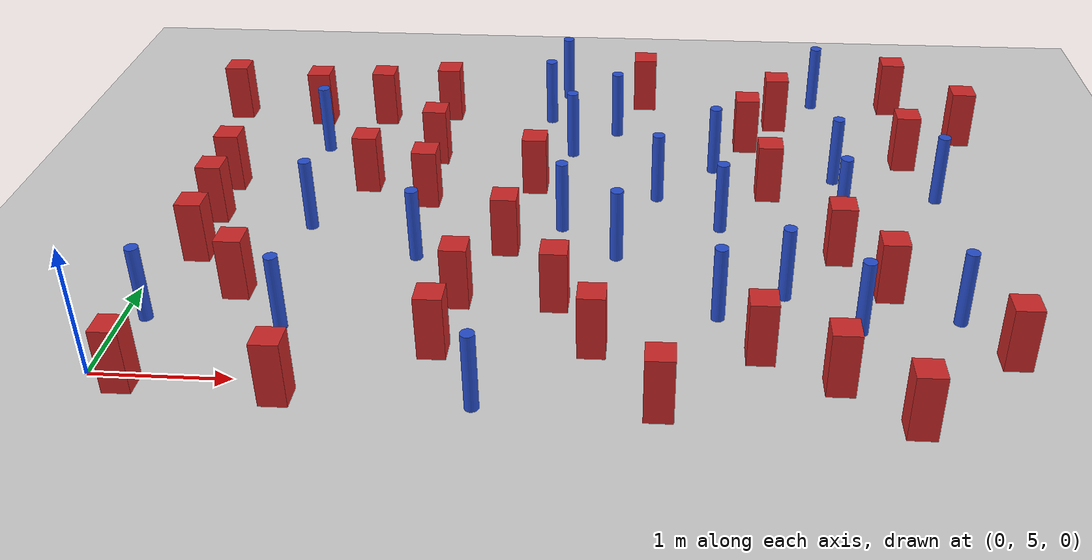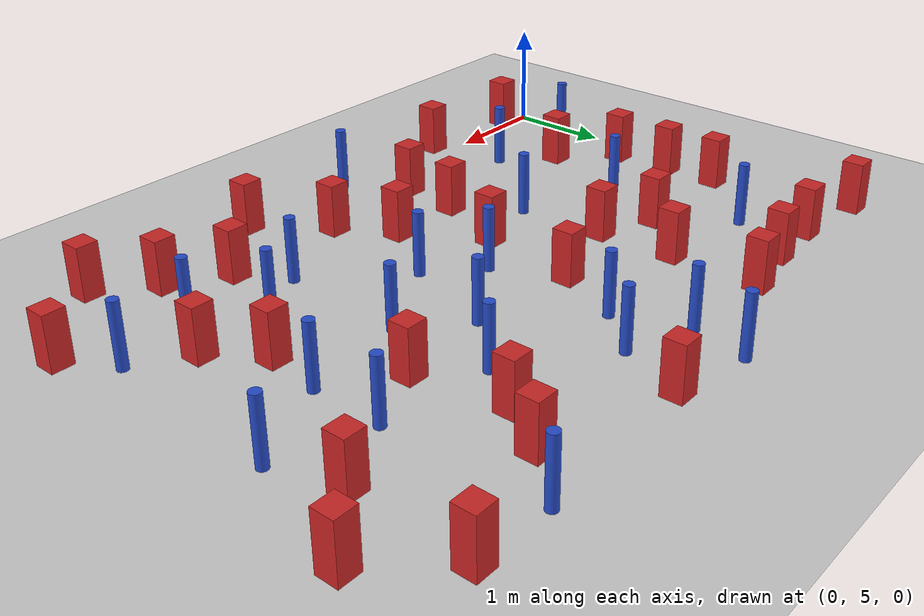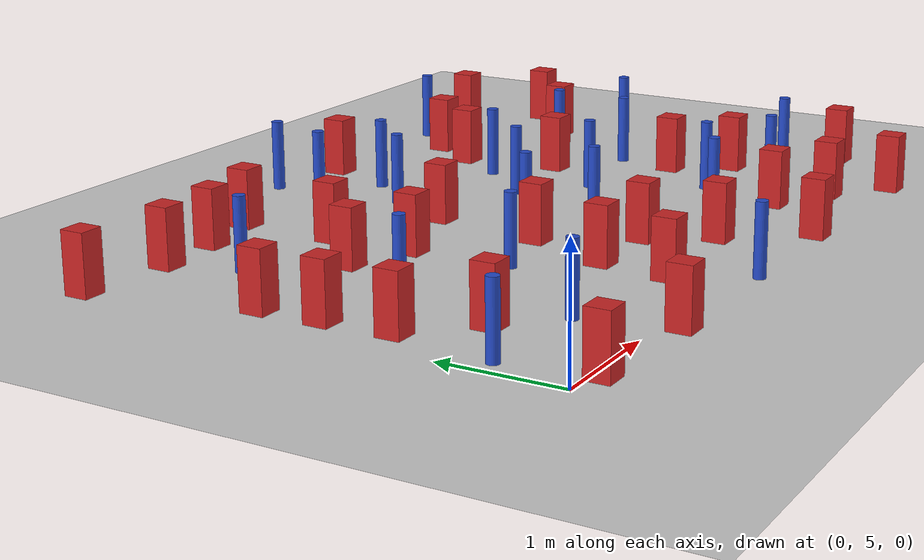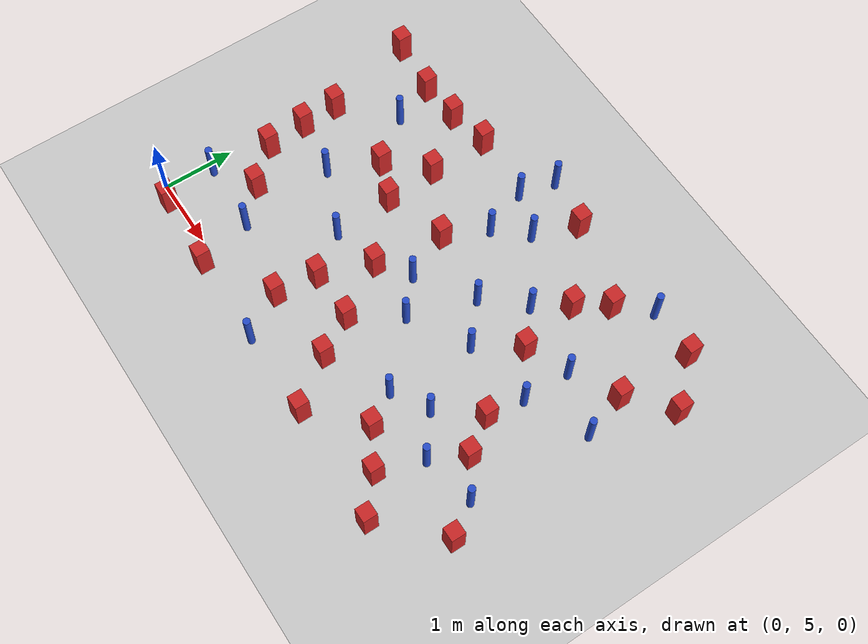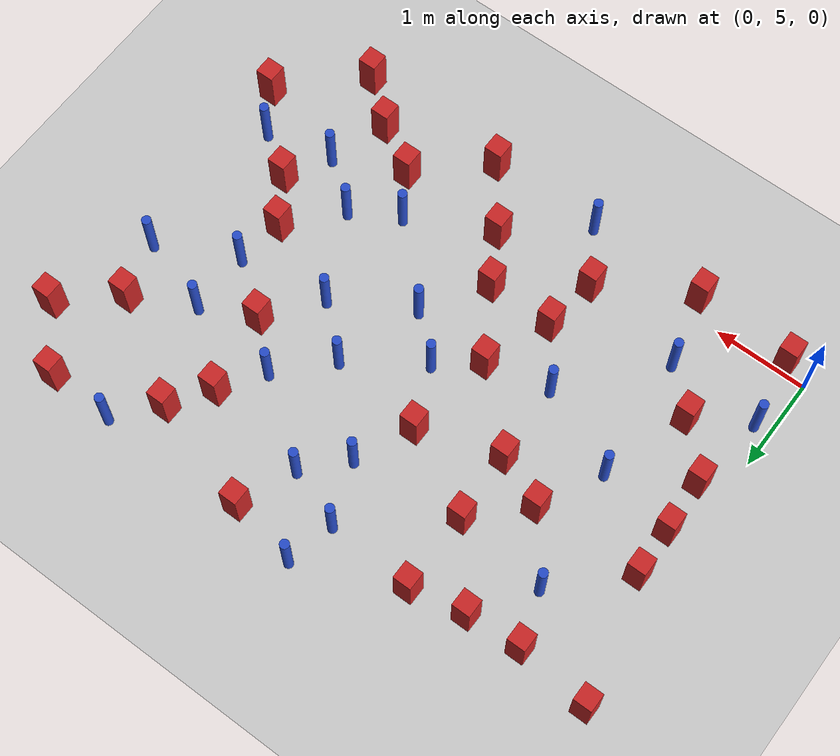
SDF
<sdf version="1.6">
 <world name="default">
  <model name="ground_plane">
   <static>1</static>
   <link name="link">
    <collision name="collision">
     <geometry><plane><normal>0 0 1</normal><size>100 100</size></plane></geometry>
     <surface><friction><ode><mu>100</mu><mu2>50</mu2></ode></friction></surface>
    </collision>
    <visual name="visual">
     <cast_shadows>0</cast_shadows>
     <geometry><plane><normal>0 0 1</normal><size>100 100</size></plane></geometry>
     <material>
      <ambient>1.0 1.0 1.0 1.0</ambient>
      <diffuse>0.8 0.8 0.8 1.0</diffuse>
      <specular>0.01 0.01 0.01 1.000000</specular>
     </material>
    </visual>
   </link>
  </model>
  <model name="pole_obstacle19">
   <static>true</static>
   <pose>3.04665153583 8.27095719519 2.88873142074e-08 -9.90536692318e-09 4.6021994893e-07 -1.20965994988e-07</pose>
   <link name="link">
    <pose>0 0 0.3 0 -0 0</pose>
    <inertial>
     <mass>1</mass>
     <inertia><ixx>0.145833</ixx><ixy>0</ixy><ixz>0</ixz><iyy>0.145833</iyy><iyz>0</iyz><izz>0.125</izz></inertia>
    </inertial>
    <collision name="collision">
     <geometry><cylinder><radius>0.05</radius><length>.6</length></cylinder></geometry>
    </collision>
    <visual name="visual">
     <geometry><cylinder><radius>0.05</radius><length>.6</length></cylinder></geometry>
     <material>
      <script><name>Gazebo/Blue</name><uri>file://media/materials/scripts/gazebo.material</uri></script>
     </material>
    </visual>
   </link>
  </model>
  <model name="square_post_obstacle15">
   <static>true</static>
   <pose>5.49864312743 4.75280284831 8.22691968438e-08 7.2212513382e-06 -7.54495500217e-07 2.29674213826e-05</pose>
   <link name="link">
    <pose>0 0 0.25 0 -0 0</pose>
    <inertial>
     <mass>100</mass>
     <inertia>
      <ixx>0.166667</ixx>
      <ixy>0</ixy>
      <ixz>0</ixz>
      <iyy>0.166667</iyy>
      <iyz>0</iyz>
      <izz>0.166667</izz>
     </inertia>
    </inertial>
    <collision name="collision"><geometry><box><size>.2 .2 .5</size></box></geometry></collision>
    <visual name="visual">
     <geometry><box><size>.2 .2 .5</size></box></geometry>
     <material>
      <script><name>Gazebo/Red</name><uri>file://media/materials/scripts/gazebo.material</uri></script>
     </material>
    </visual>
   </link>
  </model>
  <model name="pole_obstacle25">
   <static>true</static>
   <pose>5.22740422593 9.34821643953 2.88873142074e-08 -9.9053668967e-09 4.60219948993e-07 -1.20965994957e-07</pose>
   <link name="link">
    <pose>0 0 0.3 0 -0 0</pose>
    <inertial>
     <mass>1</mass>
     <inertia><ixx>0.145833</ixx><ixy>0</ixy><ixz>0</ixz><iyy>0.145833</iyy><iyz>0</iyz><izz>0.125</izz></inertia>
    </inertial>
    <collision name="collision">
     <geometry><cylinder><radius>0.05</radius><length>.6</length></cylinder></geometry>
    </collision>
    <visual name="visual">
     <geometry><cylinder><radius>0.05</radius><length>.6</length></cylinder></geometry>
     <material>
      <script><name>Gazebo/Blue</name><uri>file://media/materials/scripts/gazebo.material</uri></script>
     </material>
    </visual>
   </link>
  </model>
  <model name="pole_obstacle29">
   <static>true</static>
   <pose>3.04993943318 7.02499457316 2.88873142074e-08 -9.90536689859e-09 4.60219948989e-07 -1.20965994961e-07</pose>
   <link name="link">
    <pose>0 0 0.3 0 -0 0</pose>
    <inertial>
     <mass>1</mass>
     <inertia><ixx>0.145833</ixx><ixy>0</ixy><ixz>0</ixz><iyy>0.145833</iyy><iyz>0</iyz><izz>0.125</izz></inertia>
    </inertial>
    <collision name="collision">
     <geometry><cylinder><radius>0.05</radius><length>.6</length></cylinder></geometry>
    </collision>
    <visual name="visual">
     <geometry><cylinder><radius>0.05</radius><length>.6</length></cylinder></geometry>
     <material>
      <script><name>Gazebo/Blue</name><uri>file://media/materials/scripts/gazebo.material</uri></script>
     </material>
    </visual>
   </link>
  </model>
  <model name="pole_obstacle32">
   <static>true</static>
   <pose>4.7484195293 6.16862415002 2.88873142074e-08 -9.90536690842e-09 4.60219948965e-07 -1.20965994976e-07</pose>
   <link name="link">
    <pose>0 0 0.3 0 -0 0</pose>
    <inertial>
     <mass>1</mass>
     <inertia><ixx>0.145833</ixx><ixy>0</ixy><ixz>0</ixz><iyy>0.145833</iyy><iyz>0</iyz><izz>0.125</izz></inertia>
    </inertial>
    <collision name="collision">
     <geometry><cylinder><radius>0.05</radius><length>.6</length></cylinder></geometry>
    </collision>
    <visual name="visual">
     <geometry><cylinder><radius>0.05</radius><length>.6</length></cylinder></geometry>
     <material>
      <script><name>Gazebo/Blue</name><uri>file://media/materials/scripts/gazebo.material</uri></script>
     </material>
    </visual>
   </link>
  </model>
  <model name="square_post_obstacle29">
   <static>true</static>
   <pose>3.65491956504 9.29031827062 8.22691968438e-08 7.22125133819e-06 -7.54495500217e-07 2.29674213826e-05</pose>
   <link name="link">
    <pose>0 0 0.25 0 -0 0</pose>
    <inertial>
     <mass>100</mass>
     <inertia>
      <ixx>0.166667</ixx>
      <ixy>0</ixy>
      <ixz>0</ixz>
      <iyy>0.166667</iyy>
      <iyz>0</iyz>
      <izz>0.166667</izz>
     </inertia>
    </inertial>
    <collision name="collision"><geometry><box><size>.2 .2 .5</size></box></geometry></collision>
    <visual name="visual">
     <geometry><box><size>.2 .2 .5</size></box></geometry>
     <material>
      <script><name>Gazebo/Red</name><uri>file://media/materials/scripts/gazebo.material</uri></script>
     </material>
    </visual>
   </link>
  </model>
  <model name="pole_obstacle44">
   <static>true</static>
   <pose>5.2570854194 5.77108626828 2.88873142074e-08 -9.90536690842e-09 4.60219948965e-07 -1.20965994976e-07</pose>
   <link name="link">
    <pose>0 0 0.3 0 -0 0</pose>
    <inertial>
     <mass>1</mass>
     <inertia><ixx>0.145833</ixx><ixy>0</ixy><ixz>0</ixz><iyy>0.145833</iyy><iyz>0</iyz><izz>0.125</izz></inertia>
    </inertial>
    <collision name="collision">
     <geometry><cylinder><radius>0.05</radius><length>.6</length></cylinder></geometry>
    </collision>
    <visual name="visual">
     <geometry><cylinder><radius>0.05</radius><length>.6</length></cylinder></geometry>
     <material>
      <script><name>Gazebo/Blue</name><uri>file://media/materials/scripts/gazebo.material</uri></script>
     </material>
    </visual>
   </link>
  </model>
  <model name="square_post_obstacle39">
   <static>true</static>
   <pose>4.70937005417 7.64561651861 8.22691968438e-08 7.2212513382e-06 -7.54495500217e-07 2.29674213826e-05</pose>
   <link name="link">
    <pose>0 0 0.25 0 -0 0</pose>
    <inertial>
     <mass>100</mass>
     <inertia>
      <ixx>0.166667</ixx>
      <ixy>0</ixy>
      <ixz>0</ixz>
      <iyy>0.166667</iyy>
      <iyz>0</iyz>
      <izz>0.166667</izz>
     </inertia>
    </inertial>
    <collision name="collision"><geometry><box><size>.2 .2 .5</size></box></geometry></collision>
    <visual name="visual">
     <geometry><box><size>.2 .2 .5</size></box></geometry>
     <material>
      <script><name>Gazebo/Red</name><uri>file://media/materials/scripts/gazebo.material</uri></script>
     </material>
    </visual>
   </link>
  </model>
  <model name="square_post_obstacle54">
   <static>true</static>
   <pose>0.275671468082 4.90652635051 8.22691968438e-08 7.22125133819e-06 -7.54495500217e-07 2.29674213826e-05</pose>
   <link name="link">
    <pose>0 0 0.25 0 -0 0</pose>
    <inertial>
     <mass>100</mass>
     <inertia>
      <ixx>0.166667</ixx>
      <ixy>0</ixy>
      <ixz>0</ixz>
      <iyy>0.166667</iyy>
      <iyz>0</iyz>
      <izz>0.166667</izz>
     </inertia>
    </inertial>
    <collision name="collision"><geometry><box><size>.2 .2 .5</size></box></geometry></collision>
    <visual name="visual">
     <geometry><box><size>.2 .2 .5</size></box></geometry>
     <material>
      <script><name>Gazebo/Red</name><uri>file://media/materials/scripts/gazebo.material</uri></script>
     </material>
    </visual>
   </link>
  </model>
  <model name="square_post_obstacle58">
   <static>true</static>
   <pose>1.34291297861 4.83389590893 8.22691968438e-08 7.2212513382e-06 -7.54495500217e-07 2.29674213826e-05</pose>
   <link name="link">
    <pose>0 0 0.25 0 -0 0</pose>
    <inertial>
     <mass>100</mass>
     <inertia>
      <ixx>0.166667</ixx>
      <ixy>0</ixy>
      <ixz>0</ixz>
      <iyy>0.166667</iyy>
      <iyz>0</iyz>
      <izz>0.166667</izz>
     </inertia>
    </inertial>
    <collision name="collision"><geometry><box><size>.2 .2 .5</size></box></geometry></collision>
    <visual name="visual">
     <geometry><box><size>.2 .2 .5</size></box></geometry>
     <material>
      <script><name>Gazebo/Red</name><uri>file://media/materials/scripts/gazebo.material</uri></script>
     </material>
    </visual>
   </link>
  </model>
  <model name="pole_obstacle73">
   <static>true</static>
   <pose>1.95837399342 6.54245236486 2.88873142074e-08 -9.9053668918e-09 4.60219949005e-07 -1.20965994951e-07</pose>
   <link name="link">
    <pose>0 0 0.3 0 -0 0</pose>
    <inertial>
     <mass>1</mass>
     <inertia><ixx>0.145833</ixx><ixy>0</ixy><ixz>0</ixz><iyy>0.145833</iyy><iyz>0</iyz><izz>0.125</izz></inertia>
    </inertial>
    <collision name="collision">
     <geometry><cylinder><radius>0.05</radius><length>.6</length></cylinder></geometry>
    </collision>
    <visual name="visual">
     <geometry><cylinder><radius>0.05</radius><length>.6</length></cylinder></geometry>
     <material>
      <script><name>Gazebo/Blue</name><uri>file://media/materials/scripts/gazebo.material</uri></script>
     </material>
    </visual>
   </link>
  </model>
  <model name="pole_obstacle78">
   <static>true</static>
   <pose>0.880067249082 8.24303886958 2.88873142074e-08 -9.90536690779e-09 4.60219948967e-07 -1.20965994975e-07</pose>
   <link name="link">
    <pose>0 0 0.3 0 -0 0</pose>
    <inertial>
     <mass>1</mass>
     <inertia><ixx>0.145833</ixx><ixy>0</ixy><ixz>0</ixz><iyy>0.145833</iyy><iyz>0</iyz><izz>0.125</izz></inertia>
    </inertial>
    <collision name="collision">
     <geometry><cylinder><radius>0.05</radius><length>.6</length></cylinder></geometry>
    </collision>
    <visual name="visual">
     <geometry><cylinder><radius>0.05</radius><length>.6</length></cylinder></geometry>
     <material>
      <script><name>Gazebo/Blue</name><uri>file://media/materials/scripts/gazebo.material</uri></script>
     </material>
    </visual>
   </link>
  </model>
  <model name="square_post_obstacle68">
   <static>true</static>
   <pose>5.0352594193 5.14839521115 8.22691968438e-08 7.2212513382e-06 -7.54495500217e-07 2.29674213826e-05</pose>
   <link name="link">
    <pose>0 0 0.25 0 -0 0</pose>
    <inertial>
     <mass>100</mass>
     <inertia>
      <ixx>0.166667</ixx>
      <ixy>0</ixy>
      <ixz>0</ixz>
      <iyy>0.166667</iyy>
      <iyz>0</iyz>
      <izz>0.166667</izz>
     </inertia>
    </inertial>
    <collision name="collision"><geometry><box><size>.2 .2 .5</size></box></geometry></collision>
    <visual name="visual">
     <geometry><box><size>.2 .2 .5</size></box></geometry>
     <material>
      <script><name>Gazebo/Red</name><uri>file://media/materials/scripts/gazebo.material</uri></script>
     </material>
    </visual>
   </link>
  </model>
  <model name="square_post_obstacle70">
   <static>true</static>
   <pose>0.737729937497 6.00797139993 8.22691968438e-08 7.2212513382e-06 -7.54495500217e-07 2.29674213826e-05</pose>
   <link name="link">
    <pose>0 0 0.25 0 -0 0</pose>
    <inertial>
     <mass>100</mass>
     <inertia>
      <ixx>0.166667</ixx>
      <ixy>0</ixy>
      <ixz>0</ixz>
      <iyy>0.166667</iyy>
      <iyz>0</iyz>
      <izz>0.166667</izz>
     </inertia>
    </inertial>
    <collision name="collision"><geometry><box><size>.2 .2 .5</size></box></geometry></collision>
    <visual name="visual">
     <geometry><box><size>.2 .2 .5</size></box></geometry>
     <material>
      <script><name>Gazebo/Red</name><uri>file://media/materials/scripts/gazebo.material</uri></script>
     </material>
    </visual>
   </link>
  </model>
  <model name="square_post_obstacle71">
   <static>true</static>
   <pose>4.56256185529 8.49492502473 8.22691968438e-08 7.22125133819e-06 -7.54495500217e-07 2.29674213826e-05</pose>
   <link name="link">
    <pose>0 0 0.25 0 -0 0</pose>
    <inertial>
     <mass>100</mass>
     <inertia>
      <ixx>0.166667</ixx>
      <ixy>0</ixy>
      <ixz>0</ixz>
      <iyy>0.166667</iyy>
      <iyz>0</iyz>
      <izz>0.166667</izz>
     </inertia>
    </inertial>
    <collision name="collision"><geometry><box><size>.2 .2 .5</size></box></geometry></collision>
    <visual name="visual">
     <geometry><box><size>.2 .2 .5</size></box></geometry>
     <material>
      <script><name>Gazebo/Red</name><uri>file://media/materials/scripts/gazebo.material</uri></script>
     </material>
    </visual>
   </link>
  </model>
  <model name="square_post_obstacle74">
   <static>true</static>
   <pose>5.19543879458 6.71064747718 8.22691968438e-08 7.2212513382e-06 -7.54495500217e-07 2.29674213826e-05</pose>
   <link name="link">
    <pose>0 0 0.25 0 -0 0</pose>
    <inertial>
     <mass>100</mass>
     <inertia>
      <ixx>0.166667</ixx>
      <ixy>0</ixy>
      <ixz>0</ixz>
      <iyy>0.166667</iyy>
      <iyz>0</iyz>
      <izz>0.166667</izz>
     </inertia>
    </inertial>
    <collision name="collision"><geometry><box><size>.2 .2 .5</size></box></geometry></collision>
    <visual name="visual">
     <geometry><box><size>.2 .2 .5</size></box></geometry>
     <material>
      <script><name>Gazebo/Red</name><uri>file://media/materials/scripts/gazebo.material</uri></script>
     </material>
    </visual>
   </link>
  </model>
  <model name="pole_obstacle91">
   <static>true</static>
   <pose>1.04558706008 6.93937079224 2.88873142074e-08 -9.90536689905e-09 4.60219948988e-07 -1.20965994961e-07</pose>
   <link name="link">
    <pose>0 0 0.3 0 -0 0</pose>
    <inertial>
     <mass>1</mass>
     <inertia><ixx>0.145833</ixx><ixy>0</ixy><ixz>0</ixz><iyy>0.145833</iyy><iyz>0</iyz><izz>0.125</izz></inertia>
    </inertial>
    <collision name="collision">
     <geometry><cylinder><radius>0.05</radius><length>.6</length></cylinder></geometry>
    </collision>
    <visual name="visual">
     <geometry><cylinder><radius>0.05</radius><length>.6</length></cylinder></geometry>
     <material>
      <script><name>Gazebo/Blue</name><uri>file://media/materials/scripts/gazebo.material</uri></script>
     </material>
    </visual>
   </link>
  </model>
  <model name="square_post_obstacle85">
   <static>true</static>
   <pose>5.90828236944 8.2419019928 8.22691968438e-08 7.22125133819e-06 -7.54495500217e-07 2.29674213826e-05</pose>
   <link name="link">
    <pose>0 0 0.25 0 -0 0</pose>
    <inertial>
     <mass>100</mass>
     <inertia>
      <ixx>0.166667</ixx>
      <ixy>0</ixy>
      <ixz>0</ixz>
      <iyy>0.166667</iyy>
      <iyz>0</iyz>
      <izz>0.166667</izz>
     </inertia>
    </inertial>
    <collision name="collision"><geometry><box><size>.2 .2 .5</size></box></geometry></collision>
    <visual name="visual">
     <geometry><box><size>.2 .2 .5</size></box></geometry>
     <material>
      <script><name>Gazebo/Red</name><uri>file://media/materials/scripts/gazebo.material</uri></script>
     </material>
    </visual>
   </link>
  </model>
  <model name="pole_obstacle95">
   <static>true</static>
   <pose>4.25388267683 5.88472788344 2.88873142074e-08 -9.90536690842e-09 4.60219948965e-07 -1.20965994976e-07</pose>
   <link name="link">
    <pose>0 0 0.3 0 -0 0</pose>
    <inertial>
     <mass>1</mass>
     <inertia><ixx>0.145833</ixx><ixy>0</ixy><ixz>0</ixz><iyy>0.145833</iyy><iyz>0</iyz><izz>0.125</izz></inertia>
    </inertial>
    <collision name="collision">
     <geometry><cylinder><radius>0.05</radius><length>.6</length></cylinder></geometry>
    </collision>
    <visual name="visual">
     <geometry><cylinder><radius>0.05</radius><length>.6</length></cylinder></geometry>
     <material>
      <script><name>Gazebo/Blue</name><uri>file://media/materials/scripts/gazebo.material</uri></script>
     </material>
    </visual>
   </link>
  </model>
  <model name="pole_obstacle96">
   <static>true</static>
   <pose>3.79587017795 7.536692493 2.88873142074e-08 -9.90536689859e-09 4.60219948989e-07 -1.20965994961e-07</pose>
   <link name="link">
    <pose>0 0 0.3 0 -0 0</pose>
    <inertial>
     <mass>1</mass>
     <inertia><ixx>0.145833</ixx><ixy>0</ixy><ixz>0</ixz><iyy>0.145833</iyy><iyz>0</iyz><izz>0.125</izz></inertia>
    </inertial>
    <collision name="collision">
     <geometry><cylinder><radius>0.05</radius><length>.6</length></cylinder></geometry>
    </collision>
    <visual name="visual">
     <geometry><cylinder><radius>0.05</radius><length>.6</length></cylinder></geometry>
     <material>
      <script><name>Gazebo/Blue</name><uri>file://media/materials/scripts/gazebo.material</uri></script>
     </material>
    </visual>
   </link>
  </model>
  <model name="pole_obstacle102">
   <static>true</static>
   <pose>2.63410899607 4.8058406999 2.88873142074e-08 -9.90536689859e-09 4.60219948989e-07 -1.20965994961e-07</pose>
   <link name="link">
    <pose>0 0 0.3 0 -0 0</pose>
    <inertial>
     <mass>1</mass>
     <inertia><ixx>0.145833</ixx><ixy>0</ixy><ixz>0</ixz><iyy>0.145833</iyy><iyz>0</iyz><izz>0.125</izz></inertia>
    </inertial>
    <collision name="collision">
     <geometry><cylinder><radius>0.05</radius><length>.6</length></cylinder></geometry>
    </collision>
    <visual name="visual">
     <geometry><cylinder><radius>0.05</radius><length>.6</length></cylinder></geometry>
     <material>
      <script><name>Gazebo/Blue</name><uri>file://media/materials/scripts/gazebo.material</uri></script>
     </material>
    </visual>
   </link>
  </model>
  <model name="pole_obstacle103">
   <static>true</static>
   <pose>2.80768999344 8.91369348416 2.88873142074e-08 -9.90536692318e-09 4.6021994893e-07 -1.20965994988e-07</pose>
   <link name="link">
    <pose>0 0 0.3 0 -0 0</pose>
    <inertial>
     <mass>1</mass>
     <inertia><ixx>0.145833</ixx><ixy>0</ixy><ixz>0</ixz><iyy>0.145833</iyy><iyz>0</iyz><izz>0.125</izz></inertia>
    </inertial>
    <collision name="collision">
     <geometry><cylinder><radius>0.05</radius><length>.6</length></cylinder></geometry>
    </collision>
    <visual name="visual">
     <geometry><cylinder><radius>0.05</radius><length>.6</length></cylinder></geometry>
     <material>
      <script><name>Gazebo/Blue</name><uri>file://media/materials/scripts/gazebo.material</uri></script>
     </material>
    </visual>
   </link>
  </model>
  <model name="pole_obstacle110">
   <static>true</static>
   <pose>0.166092889365 5.64815533019 2.88873142074e-08 -9.90536689843e-09 4.60219948989e-07 -1.20965994962e-07</pose>
   <link name="link">
    <pose>0 0 0.3 0 -0 0</pose>
    <inertial>
     <mass>1</mass>
     <inertia><ixx>0.145833</ixx><ixy>0</ixy><ixz>0</ixz><iyy>0.145833</iyy><iyz>0</iyz><izz>0.125</izz></inertia>
    </inertial>
    <collision name="collision">
     <geometry><cylinder><radius>0.05</radius><length>.6</length></cylinder></geometry>
    </collision>
    <visual name="visual">
     <geometry><cylinder><radius>0.05</radius><length>.6</length></cylinder></geometry>
     <material>
      <script><name>Gazebo/Blue</name><uri>file://media/materials/scripts/gazebo.material</uri></script>
     </material>
    </visual>
   </link>
  </model>
  <model name="pole_obstacle111">
   <static>true</static>
   <pose>2.92628457447 9.43345542105 2.88873142074e-08 -9.90536692318e-09 4.6021994893e-07 -1.20965994988e-07</pose>
   <link name="link">
    <pose>0 0 0.3 0 -0 0</pose>
    <inertial>
     <mass>1</mass>
     <inertia><ixx>0.145833</ixx><ixy>0</ixy><ixz>0</ixz><iyy>0.145833</iyy><iyz>0</iyz><izz>0.125</izz></inertia>
    </inertial>
    <collision name="collision">
     <geometry><cylinder><radius>0.05</radius><length>.6</length></cylinder></geometry>
    </collision>
    <visual name="visual">
     <geometry><cylinder><radius>0.05</radius><length>.6</length></cylinder></geometry>
     <material>
      <script><name>Gazebo/Blue</name><uri>file://media/materials/scripts/gazebo.material</uri></script>
     </material>
    </visual>
   </link>
  </model>
  <model name="square_post_obstacle109">
   <static>true</static>
   <pose>0.700924998519 8.81362943628 8.22691968438e-08 7.22125133819e-06 -7.54495500217e-07 2.29674213826e-05</pose>
   <link name="link">
    <pose>0 0 0.25 0 -0 0</pose>
    <inertial>
     <mass>100</mass>
     <inertia>
      <ixx>0.166667</ixx>
      <ixy>0</ixy>
      <ixz>0</ixz>
      <iyy>0.166667</iyy>
      <iyz>0</iyz>
      <izz>0.166667</izz>
     </inertia>
    </inertial>
    <collision name="collision"><geometry><box><size>.2 .2 .5</size></box></geometry></collision>
    <visual name="visual">
     <geometry><box><size>.2 .2 .5</size></box></geometry>
     <material>
      <script><name>Gazebo/Red</name><uri>file://media/materials/scripts/gazebo.material</uri></script>
     </material>
    </visual>
   </link>
  </model>
  <model name="square_post_obstacle112">
   <static>true</static>
   <pose>1.37549284152 7.61630496292 8.22691968438e-08 7.2212513382e-06 -7.54495500217e-07 2.29674213826e-05</pose>
   <link name="link">
    <pose>0 0 0.25 0 -0 0</pose>
    <inertial>
     <mass>100</mass>
     <inertia>
      <ixx>0.166667</ixx>
      <ixy>0</ixy>
      <ixz>0</ixz>
      <iyy>0.166667</iyy>
      <iyz>0</iyz>
      <izz>0.166667</izz>
     </inertia>
    </inertial>
    <collision name="collision"><geometry><box><size>.2 .2 .5</size></box></geometry></collision>
    <visual name="visual">
     <geometry><box><size>.2 .2 .5</size></box></geometry>
     <material>
      <script><name>Gazebo/Red</name><uri>file://media/materials/scripts/gazebo.material</uri></script>
     </material>
    </visual>
   </link>
  </model>
  <model name="square_post_obstacle118">
   <static>true</static>
   <pose>5.51050790653 6.23997386702 8.22691968438e-08 7.2212513382e-06 -7.54495500217e-07 2.29674213826e-05</pose>
   <link name="link">
    <pose>0 0 0.25 0 -0 0</pose>
    <inertial>
     <mass>100</mass>
     <inertia>
      <ixx>0.166667</ixx>
      <ixy>0</ixy>
      <ixz>0</ixz>
      <iyy>0.166667</iyy>
      <iyz>0</iyz>
      <izz>0.166667</izz>
     </inertia>
    </inertial>
    <collision name="collision"><geometry><box><size>.2 .2 .5</size></box></geometry></collision>
    <visual name="visual">
     <geometry><box><size>.2 .2 .5</size></box></geometry>
     <material>
      <script><name>Gazebo/Red</name><uri>file://media/materials/scripts/gazebo.material</uri></script>
     </material>
    </visual>
   </link>
  </model>
  <model name="pole_obstacle118">
   <static>true</static>
   <pose>4.2723034611 8.04762460536 2.88873142074e-08 -9.90536690354e-09 4.60219948977e-07 -1.20965994967e-07</pose>
   <link name="link">
    <pose>0 0 0.3 0 -0 0</pose>
    <inertial>
     <mass>1</mass>
     <inertia><ixx>0.145833</ixx><ixy>0</ixy><ixz>0</ixz><iyy>0.145833</iyy><iyz>0</iyz><izz>0.125</izz></inertia>
    </inertial>
    <collision name="collision">
     <geometry><cylinder><radius>0.05</radius><length>.6</length></cylinder></geometry>
    </collision>
    <visual name="visual">
     <geometry><cylinder><radius>0.05</radius><length>.6</length></cylinder></geometry>
     <material>
      <script><name>Gazebo/Blue</name><uri>file://media/materials/scripts/gazebo.material</uri></script>
     </material>
    </visual>
   </link>
  </model>
  <model name="pole_obstacle126">
   <static>true</static>
   <pose>1.15932483407 5.59576896852 2.88873142074e-08 -9.90536689852e-09 4.60219948989e-07 -1.2096599496e-07</pose>
   <link name="link">
    <pose>0 0 0.3 0 -0 0</pose>
    <inertial>
     <mass>1</mass>
     <inertia><ixx>0.145833</ixx><ixy>0</ixy><ixz>0</ixz><iyy>0.145833</iyy><iyz>0</iyz><izz>0.125</izz></inertia>
    </inertial>
    <collision name="collision">
     <geometry><cylinder><radius>0.05</radius><length>.6</length></cylinder></geometry>
    </collision>
    <visual name="visual">
     <geometry><cylinder><radius>0.05</radius><length>.6</length></cylinder></geometry>
     <material>
      <script><name>Gazebo/Blue</name><uri>file://media/materials/scripts/gazebo.material</uri></script>
     </material>
    </visual>
   </link>
  </model>
  <model name="square_post_obstacle123">
   <static>true</static>
   <pose>1.28526257587 8.85456274518 8.22691968438e-08 7.22125133819e-06 -7.54495500217e-07 2.29674213826e-05</pose>
   <link name="link">
    <pose>0 0 0.25 0 -0 0</pose>
    <inertial>
     <mass>100</mass>
     <inertia>
      <ixx>0.166667</ixx>
      <ixy>0</ixy>
      <ixz>0</ixz>
      <iyy>0.166667</iyy>
      <iyz>0</iyz>
      <izz>0.166667</izz>
     </inertia>
    </inertial>
    <collision name="collision"><geometry><box><size>.2 .2 .5</size></box></geometry></collision>
    <visual name="visual">
     <geometry><box><size>.2 .2 .5</size></box></geometry>
     <material>
      <script><name>Gazebo/Red</name><uri>file://media/materials/scripts/gazebo.material</uri></script>
     </material>
    </visual>
   </link>
  </model>
  <model name="pole_obstacle128">
   <static>true</static>
   <pose>6.09617557317 7.63492072291 2.88873142074e-08 -9.90536690842e-09 4.60219948965e-07 -1.20965994976e-07</pose>
   <link name="link">
    <pose>0 0 0.3 0 -0 0</pose>
    <inertial>
     <mass>1</mass>
     <inertia><ixx>0.145833</ixx><ixy>0</ixy><ixz>0</ixz><iyy>0.145833</iyy><iyz>0</iyz><izz>0.125</izz></inertia>
    </inertial>
    <collision name="collision">
     <geometry><cylinder><radius>0.05</radius><length>.6</length></cylinder></geometry>
    </collision>
    <visual name="visual">
     <geometry><cylinder><radius>0.05</radius><length>.6</length></cylinder></geometry>
     <material>
      <script><name>Gazebo/Blue</name><uri>file://media/materials/scripts/gazebo.material</uri></script>
     </material>
    </visual>
   </link>
  </model>
  <model name="square_post_obstacle125">
   <static>true</static>
   <pose>3.07713344704 5.98007415622 8.22691968438e-08 7.2212513382e-06 -7.54495500217e-07 2.29674213826e-05</pose>
   <link name="link">
    <pose>0 0 0.25 0 -0 0</pose>
    <inertial>
     <mass>100</mass>
     <inertia>
      <ixx>0.166667</ixx>
      <ixy>0</ixy>
      <ixz>0</ixz>
      <iyy>0.166667</iyy>
      <iyz>0</iyz>
      <izz>0.166667</izz>
     </inertia>
    </inertial>
    <collision name="collision"><geometry><box><size>.2 .2 .5</size></box></geometry></collision>
    <visual name="visual">
     <geometry><box><size>.2 .2 .5</size></box></geometry>
     <material>
      <script><name>Gazebo/Red</name><uri>file://media/materials/scripts/gazebo.material</uri></script>
     </material>
    </visual>
   </link>
  </model>
  <model name="pole_obstacle130">
   <static>true</static>
   <pose>3.4959295349 6.62695267982 2.88873142074e-08 -9.90536689859e-09 4.60219948989e-07 -1.20965994961e-07</pose>
   <link name="link">
    <pose>0 0 0.3 0 -0 0</pose>
    <inertial>
     <mass>1</mass>
     <inertia><ixx>0.145833</ixx><ixy>0</ixy><ixz>0</ixz><iyy>0.145833</iyy><iyz>0</iyz><izz>0.125</izz></inertia>
    </inertial>
    <collision name="collision">
     <geometry><cylinder><radius>0.05</radius><length>.6</length></cylinder></geometry>
    </collision>
    <visual name="visual">
     <geometry><cylinder><radius>0.05</radius><length>.6</length></cylinder></geometry>
     <material>
      <script><name>Gazebo/Blue</name><uri>file://media/materials/scripts/gazebo.material</uri></script>
     </material>
    </visual>
   </link>
  </model>
  <model name="square_post_obstacle128">
   <static>true</static>
   <pose>6.46298179436 8.7329508687 8.22691968438e-08 7.22125133819e-06 -7.54495500217e-07 2.29674213826e-05</pose>
   <link name="link">
    <pose>0 0 0.25 0 -0 0</pose>
    <inertial>
     <mass>100</mass>
     <inertia>
      <ixx>0.166667</ixx>
      <ixy>0</ixy>
      <ixz>0</ixz>
      <iyy>0.166667</iyy>
      <iyz>0</iyz>
      <izz>0.166667</izz>
     </inertia>
    </inertial>
    <collision name="collision"><geometry><box><size>.2 .2 .5</size></box></geometry></collision>
    <visual name="visual">
     <geometry><box><size>.2 .2 .5</size></box></geometry>
     <material>
      <script><name>Gazebo/Red</name><uri>file://media/materials/scripts/gazebo.material</uri></script>
     </material>
    </visual>
   </link>
  </model>
  <model name="square_post_obstacle129">
   <static>true</static>
   <pose>4.84530076609 8.92120422224 8.22691968438e-08 7.22125133819e-06 -7.54495500217e-07 2.29674213826e-05</pose>
   <link name="link">
    <pose>0 0 0.25 0 -0 0</pose>
    <inertial>
     <mass>100</mass>
     <inertia>
      <ixx>0.166667</ixx>
      <ixy>0</ixy>
      <ixz>0</ixz>
      <iyy>0.166667</iyy>
      <iyz>0</iyz>
      <izz>0.166667</izz>
     </inertia>
    </inertial>
    <collision name="collision"><geometry><box><size>.2 .2 .5</size></box></geometry></collision>
    <visual name="visual">
     <geometry><box><size>.2 .2 .5</size></box></geometry>
     <material>
      <script><name>Gazebo/Red</name><uri>file://media/materials/scripts/gazebo.material</uri></script>
     </material>
    </visual>
   </link>
  </model>
  <model name="square_post_obstacle132">
   <static>true</static>
   <pose>3.84406991262 4.8189237755 8.22691968438e-08 7.2212513382e-06 -7.54495500217e-07 2.29674213826e-05</pose>
   <link name="link">
    <pose>0 0 0.25 0 -0 0</pose>
    <inertial>
     <mass>100</mass>
     <inertia>
      <ixx>0.166667</ixx>
      <ixy>0</ixy>
      <ixz>0</ixz>
      <iyy>0.166667</iyy>
      <iyz>0</iyz>
      <izz>0.166667</izz>
     </inertia>
    </inertial>
    <collision name="collision"><geometry><box><size>.2 .2 .5</size></box></geometry></collision>
    <visual name="visual">
     <geometry><box><size>.2 .2 .5</size></box></geometry>
     <material>
      <script><name>Gazebo/Red</name><uri>file://media/materials/scripts/gazebo.material</uri></script>
     </material>
    </visual>
   </link>
  </model>
  <model name="square_post_obstacle133">
   <static>true</static>
   <pose>0.253003445852 7.05548185995 8.22691968438e-08 7.22125133819e-06 -7.54495500217e-07 2.29674213826e-05</pose>
   <link name="link">
    <pose>0 0 0.25 0 -0 0</pose>
    <inertial>
     <mass>100</mass>
     <inertia>
      <ixx>0.166667</ixx>
      <ixy>0</ixy>
      <ixz>0</ixz>
      <iyy>0.166667</iyy>
      <iyz>0</iyz>
      <izz>0.166667</izz>
     </inertia>
    </inertial>
    <collision name="collision"><geometry><box><size>.2 .2 .5</size></box></geometry></collision>
    <visual name="visual">
     <geometry><box><size>.2 .2 .5</size></box></geometry>
     <material>
      <script><name>Gazebo/Red</name><uri>file://media/materials/scripts/gazebo.material</uri></script>
     </material>
    </visual>
   </link>
  </model>
  <model name="square_post_obstacle134">
   <static>true</static>
   <pose>1.86693811746 8.96910181628 8.22691968438e-08 7.22125133819e-06 -7.54495500217e-07 2.29674213826e-05</pose>
   <link name="link">
    <pose>0 0 0.25 0 -0 0</pose>
    <inertial>
     <mass>100</mass>
     <inertia>
      <ixx>0.166667</ixx>
      <ixy>0</ixy>
      <ixz>0</ixz>
      <iyy>0.166667</iyy>
      <iyz>0</iyz>
      <izz>0.166667</izz>
     </inertia>
    </inertial>
    <collision name="collision"><geometry><box><size>.2 .2 .5</size></box></geometry></collision>
    <visual name="visual">
     <geometry><box><size>.2 .2 .5</size></box></geometry>
     <material>
      <script><name>Gazebo/Red</name><uri>file://media/materials/scripts/gazebo.material</uri></script>
     </material>
    </visual>
   </link>
  </model>
  <model name="square_post_obstacle136">
   <static>true</static>
   <pose>-0.085791148713 8.90567465335 8.22691968438e-08 7.22125133819e-06 -7.54495500217e-07 2.29674213826e-05</pose>
   <link name="link">
    <pose>0 0 0.25 0 -0 0</pose>
    <inertial>
     <mass>100</mass>
     <inertia>
      <ixx>0.166667</ixx>
      <ixy>0</ixy>
      <ixz>0</ixz>
      <iyy>0.166667</iyy>
      <iyz>0</iyz>
      <izz>0.166667</izz>
     </inertia>
    </inertial>
    <collision name="collision"><geometry><box><size>.2 .2 .5</size></box></geometry></collision>
    <visual name="visual">
     <geometry><box><size>.2 .2 .5</size></box></geometry>
     <material>
      <script><name>Gazebo/Red</name><uri>file://media/materials/scripts/gazebo.material</uri></script>
     </material>
    </visual>
   </link>
  </model>
  <model name="square_post_obstacle139">
   <static>true</static>
   <pose>0.284751243862 6.485855284 8.22691968438e-08 7.22125133819e-06 -7.54495500217e-07 2.29674213826e-05</pose>
   <link name="link">
    <pose>0 0 0.25 0 -0 0</pose>
    <inertial>
     <mass>100</mass>
     <inertia>
      <ixx>0.166667</ixx>
      <ixy>0</ixy>
      <ixz>0</ixz>
      <iyy>0.166667</iyy>
      <iyz>0</iyz>
      <izz>0.166667</izz>
     </inertia>
    </inertial>
    <collision name="collision"><geometry><box><size>.2 .2 .5</size></box></geometry></collision>
    <visual name="visual">
     <geometry><box><size>.2 .2 .5</size></box></geometry>
     <material>
      <script><name>Gazebo/Red</name><uri>file://media/materials/scripts/gazebo.material</uri></script>
     </material>
    </visual>
   </link>
  </model>
  <model name="square_post_obstacle142">
   <static>true</static>
   <pose>2.63715184069 6.6995599667 8.22691968438e-08 7.2212513382e-06 -7.54495500217e-07 2.29674213826e-05</pose>
   <link name="link">
    <pose>0 0 0.25 0 -0 0</pose>
    <inertial>
     <mass>100</mass>
     <inertia>
      <ixx>0.166667</ixx>
      <ixy>0</ixy>
      <ixz>0</ixz>
      <iyy>0.166667</iyy>
      <iyz>0</iyz>
      <izz>0.166667</izz>
     </inertia>
    </inertial>
    <collision name="collision"><geometry><box><size>.2 .2 .5</size></box></geometry></collision>
    <visual name="visual">
     <geometry><box><size>.2 .2 .5</size></box></geometry>
     <material>
      <script><name>Gazebo/Red</name><uri>file://media/materials/scripts/gazebo.material</uri></script>
     </material>
    </visual>
   </link>
  </model>
  <model name="square_post_obstacle143">
   <static>true</static>
   <pose>4.52881382544 5.44836196263 8.22691968438e-08 7.2212513382e-06 -7.54495500217e-07 2.29674213826e-05</pose>
   <link name="link">
    <pose>0 0 0.25 0 -0 0</pose>
    <inertial>
     <mass>100</mass>
     <inertia>
      <ixx>0.166667</ixx>
      <ixy>0</ixy>
      <ixz>0</ixz>
      <iyy>0.166667</iyy>
      <iyz>0</iyz>
      <izz>0.166667</izz>
     </inertia>
    </inertial>
    <collision name="collision"><geometry><box><size>.2 .2 .5</size></box></geometry></collision>
    <visual name="visual">
     <geometry><box><size>.2 .2 .5</size></box></geometry>
     <material>
      <script><name>Gazebo/Red</name><uri>file://media/materials/scripts/gazebo.material</uri></script>
     </material>
    </visual>
   </link>
  </model>
  <model name="square_post_obstacle147">
   <static>true</static>
   <pose>0.232023718733 7.58020245504 8.22691968438e-08 7.2212513382e-06 -7.54495500217e-07 2.29674213826e-05</pose>
   <link name="link">
    <pose>0 0 0.25 0 -0 0</pose>
    <inertial>
     <mass>100</mass>
     <inertia>
      <ixx>0.166667</ixx>
      <ixy>0</ixy>
      <ixz>0</ixz>
      <iyy>0.166667</iyy>
      <iyz>0</iyz>
      <izz>0.166667</izz>
     </inertia>
    </inertial>
    <collision name="collision"><geometry><box><size>.2 .2 .5</size></box></geometry></collision>
    <visual name="visual">
     <geometry><box><size>.2 .2 .5</size></box></geometry>
     <material>
      <script><name>Gazebo/Red</name><uri>file://media/materials/scripts/gazebo.material</uri></script>
     </material>
    </visual>
   </link>
  </model>
  <model name="square_post_obstacle152">
   <static>true</static>
   <pose>6.26121523382 5.49113726116 8.22691968438e-08 7.2212513382e-06 -7.54495500217e-07 2.29674213826e-05</pose>
   <link name="link">
    <pose>0 0 0.25 0 -0 0</pose>
    <inertial>
     <mass>100</mass>
     <inertia>
      <ixx>0.166667</ixx>
      <ixy>0</ixy>
      <ixz>0</ixz>
      <iyy>0.166667</iyy>
      <iyz>0</iyz>
      <izz>0.166667</izz>
     </inertia>
    </inertial>
    <collision name="collision"><geometry><box><size>.2 .2 .5</size></box></geometry></collision>
    <visual name="visual">
     <geometry><box><size>.2 .2 .5</size></box></geometry>
     <material>
      <script><name>Gazebo/Red</name><uri>file://media/materials/scripts/gazebo.material</uri></script>
     </material>
    </visual>
   </link>
  </model>
  <model name="pole_obstacle158">
   <static>true</static>
   <pose>5.98068474412 5.92787201898 2.88873142074e-08 -9.90536690842e-09 4.60219948965e-07 -1.20965994976e-07</pose>
   <link name="link">
    <pose>0 0 0.3 0 -0 0</pose>
    <inertial>
     <mass>1</mass>
     <inertia><ixx>0.145833</ixx><ixy>0</ixy><ixz>0</ixz><iyy>0.145833</iyy><iyz>0</iyz><izz>0.125</izz></inertia>
    </inertial>
    <collision name="collision">
     <geometry><cylinder><radius>0.05</radius><length>.6</length></cylinder></geometry>
    </collision>
    <visual name="visual">
     <geometry><cylinder><radius>0.05</radius><length>.6</length></cylinder></geometry>
     <material>
      <script><name>Gazebo/Blue</name><uri>file://media/materials/scripts/gazebo.material</uri></script>
     </material>
    </visual>
   </link>
  </model>
  <model name="square_post_obstacle163">
   <static>true</static>
   <pose>2.28683087736 5.38735554825 8.22691968438e-08 7.2212513382e-06 -7.54495500217e-07 2.29674213826e-05</pose>
   <link name="link">
    <pose>0 0 0.25 0 -0 0</pose>
    <inertial>
     <mass>100</mass>
     <inertia>
      <ixx>0.166667</ixx>
      <ixy>0</ixy>
      <ixz>0</ixz>
      <iyy>0.166667</iyy>
      <iyz>0</iyz>
      <izz>0.166667</izz>
     </inertia>
    </inertial>
    <collision name="collision"><geometry><box><size>.2 .2 .5</size></box></geometry></collision>
    <visual name="visual">
     <geometry><box><size>.2 .2 .5</size></box></geometry>
     <material>
      <script><name>Gazebo/Red</name><uri>file://media/materials/scripts/gazebo.material</uri></script>
     </material>
    </visual>
   </link>
  </model>
  <model name="square_post_obstacle169">
   <static>true</static>
   <pose>5.93096108197 9.31706938261 8.22691968438e-08 7.22125133819e-06 -7.54495500217e-07 2.29674213826e-05</pose>
   <link name="link">
    <pose>0 0 0.25 0 -0 0</pose>
    <inertial>
     <mass>100</mass>
     <inertia>
      <ixx>0.166667</ixx>
      <ixy>0</ixy>
      <ixz>0</ixz>
      <iyy>0.166667</iyy>
      <iyz>0</iyz>
      <izz>0.166667</izz>
     </inertia>
    </inertial>
    <collision name="collision"><geometry><box><size>.2 .2 .5</size></box></geometry></collision>
    <visual name="visual">
     <geometry><box><size>.2 .2 .5</size></box></geometry>
     <material>
      <script><name>Gazebo/Red</name><uri>file://media/materials/scripts/gazebo.material</uri></script>
     </material>
    </visual>
   </link>
  </model>
  <model name="square_post_obstacle176">
   <static>true</static>
   <pose>1.8726331263 8.12636055415 8.22691968438e-08 7.22125133819e-06 -7.54495500217e-07 2.29674213826e-05</pose>
   <link name="link">
    <pose>0 0 0.25 0 -0 0</pose>
    <inertial>
     <mass>100</mass>
     <inertia>
      <ixx>0.166667</ixx>
      <ixy>0</ixy>
      <ixz>0</ixz>
      <iyy>0.166667</iyy>
      <iyz>0</iyz>
      <izz>0.166667</izz>
     </inertia>
    </inertial>
    <collision name="collision"><geometry><box><size>.2 .2 .5</size></box></geometry></collision>
    <visual name="visual">
     <geometry><box><size>.2 .2 .5</size></box></geometry>
     <material>
      <script><name>Gazebo/Red</name><uri>file://media/materials/scripts/gazebo.material</uri></script>
     </material>
    </visual>
   </link>
  </model>
  <model name="pole_obstacle183">
   <static>true</static>
   <pose>3.4193244773 8.68258590561 2.88873142074e-08 -9.90536692318e-09 4.6021994893e-07 -1.20965994988e-07</pose>
   <link name="link">
    <pose>0 0 0.3 0 -0 0</pose>
    <inertial>
     <mass>1</mass>
     <inertia><ixx>0.145833</ixx><ixy>0</ixy><ixz>0</ixz><iyy>0.145833</iyy><iyz>0</iyz><izz>0.125</izz></inertia>
    </inertial>
    <collision name="collision">
     <geometry><cylinder><radius>0.05</radius><length>.6</length></cylinder></geometry>
    </collision>
    <visual name="visual">
     <geometry><cylinder><radius>0.05</radius><length>.6</length></cylinder></geometry>
     <material>
      <script><name>Gazebo/Blue</name><uri>file://media/materials/scripts/gazebo.material</uri></script>
     </material>
    </visual>
   </link>
  </model>
  <model name="square_post_obstacle184">
   <static>true</static>
   <pose>1.90894778504 7.39155078217 8.22691968438e-08 7.2212513382e-06 -7.54495500217e-07 2.29674213826e-05</pose>
   <link name="link">
    <pose>0 0 0.25 0 -0 0</pose>
    <inertial>
     <mass>100</mass>
     <inertia>
      <ixx>0.166667</ixx>
      <ixy>0</ixy>
      <ixz>0</ixz>
      <iyy>0.166667</iyy>
      <iyz>0</iyz>
      <izz>0.166667</izz>
     </inertia>
    </inertial>
    <collision name="collision"><geometry><box><size>.2 .2 .5</size></box></geometry></collision>
    <visual name="visual">
     <geometry><box><size>.2 .2 .5</size></box></geometry>
     <material>
      <script><name>Gazebo/Red</name><uri>file://media/materials/scripts/gazebo.material</uri></script>
     </material>
    </visual>
   </link>
  </model>
  <model name="pole_obstacle190">
   <static>true</static>
   <pose>5.28264101675 7.90912802256 2.88873142074e-08 -9.90536690842e-09 4.60219948965e-07 -1.20965994976e-07</pose>
   <link name="link">
    <pose>0 0 0.3 0 -0 0</pose>
    <inertial>
     <mass>1</mass>
     <inertia><ixx>0.145833</ixx><ixy>0</ixy><ixz>0</ixz><iyy>0.145833</iyy><iyz>0</iyz><izz>0.125</izz></inertia>
    </inertial>
    <collision name="collision">
     <geometry><cylinder><radius>0.05</radius><length>.6</length></cylinder></geometry>
    </collision>
    <visual name="visual">
     <geometry><cylinder><radius>0.05</radius><length>.6</length></cylinder></geometry>
     <material>
      <script><name>Gazebo/Blue</name><uri>file://media/materials/scripts/gazebo.material</uri></script>
     </material>
    </visual>
   </link>
  </model>
  <model name="pole_obstacle199">
   <static>true</static>
   <pose>5.27344106978 7.23106756317 2.88873142074e-08 -9.90536690842e-09 4.60219948965e-07 -1.20965994976e-07</pose>
   <link name="link">
    <pose>0 0 0.3 0 -0 0</pose>
    <inertial>
     <mass>1</mass>
     <inertia><ixx>0.145833</ixx><ixy>0</ixy><ixz>0</ixz><iyy>0.145833</iyy><iyz>0</iyz><izz>0.125</izz></inertia>
    </inertial>
    <collision name="collision">
     <geometry><cylinder><radius>0.05</radius><length>.6</length></cylinder></geometry>
    </collision>
    <visual name="visual">
     <geometry><cylinder><radius>0.05</radius><length>.6</length></cylinder></geometry>
     <material>
      <script><name>Gazebo/Blue</name><uri>file://media/materials/scripts/gazebo.material</uri></script>
     </material>
    </visual>
   </link>
  </model>
  <model name="pole_obstacle210">
   <static>true</static>
   <pose>4.30336941547 7.08511848329 2.88873142074e-08 -9.90536690842e-09 4.60219948965e-07 -1.20965994976e-07</pose>
   <link name="link">
    <pose>0 0 0.3 0 -0 0</pose>
    <inertial>
     <mass>1</mass>
     <inertia><ixx>0.145833</ixx><ixy>0</ixy><ixz>0</ixz><iyy>0.145833</iyy><iyz>0</iyz><izz>0.125</izz></inertia>
    </inertial>
    <collision name="collision">
     <geometry><cylinder><radius>0.05</radius><length>.6</length></cylinder></geometry>
    </collision>
    <visual name="visual">
     <geometry><cylinder><radius>0.05</radius><length>.6</length></cylinder></geometry>
     <material>
      <script><name>Gazebo/Blue</name><uri>file://media/materials/scripts/gazebo.material</uri></script>
     </material>
    </visual>
   </link>
  </model>
  <model name="square_post_obstacle214">
   <static>true</static>
   <pose>2.77508003262 7.66401996466 8.22691968438e-08 7.22125133819e-06 -7.54495500217e-07 2.29674213826e-05</pose>
   <link name="link">
    <pose>0 0 0.25 0 -0 0</pose>
    <inertial>
     <mass>100</mass>
     <inertia>
      <ixx>0.166667</ixx>
      <ixy>0</ixy>
      <ixz>0</ixz>
      <iyy>0.166667</iyy>
      <iyz>0</iyz>
      <izz>0.166667</izz>
     </inertia>
    </inertial>
    <collision name="collision"><geometry><box><size>.2 .2 .5</size></box></geometry></collision>
    <visual name="visual">
     <geometry><box><size>.2 .2 .5</size></box></geometry>
     <material>
      <script><name>Gazebo/Red</name><uri>file://media/materials/scripts/gazebo.material</uri></script>
     </material>
    </visual>
   </link>
  </model>
  <model name="square_post_obstacle218">
   <static>true</static>
   <pose>3.37587003262 5.45688996466 8.22691968438e-08 7.2212513382e-06 -7.54495500217e-07 2.29674213826e-05</pose>
   <link name="link">
    <pose>0 0 0.25 0 -0 0</pose>
    <inertial>
     <mass>100</mass>
     <inertia>
      <ixx>0.166667</ixx>
      <ixy>0</ixy>
      <ixz>0</ixz>
      <iyy>0.166667</iyy>
      <iyz>0</iyz>
      <izz>0.166667</izz>
     </inertia>
    </inertial>
    <collision name="collision"><geometry><box><size>.2 .2 .5</size></box></geometry></collision>
    <visual name="visual">
     <geometry><box><size>.2 .2 .5</size></box></geometry>
     <material>
      <script><name>Gazebo/Red</name><uri>file://media/materials/scripts/gazebo.material</uri></script>
     </material>
    </visual>
   </link>
  </model>
  <model name="square_post_obstacle222">
   <static>true</static>
   <pose>2.36195003262 5.98357996466 8.22691968438e-08 7.2212513382e-06 -7.54495500217e-07 2.29674213826e-05</pose>
   <link name="link">
    <pose>0 0 0.25 0 -0 0</pose>
    <inertial>
     <mass>100</mass>
     <inertia>
      <ixx>0.166667</ixx>
      <ixy>0</ixy>
      <ixz>0</ixz>
      <iyy>0.166667</iyy>
      <iyz>0</iyz>
      <izz>0.166667</izz>
     </inertia>
    </inertial>
    <collision name="collision"><geometry><box><size>.2 .2 .5</size></box></geometry></collision>
    <visual name="visual">
     <geometry><box><size>.2 .2 .5</size></box></geometry>
     <material>
      <script><name>Gazebo/Red</name><uri>file://media/materials/scripts/gazebo.material</uri></script>
     </material>
    </visual>
   </link>
  </model>
 </world>
</sdf>
